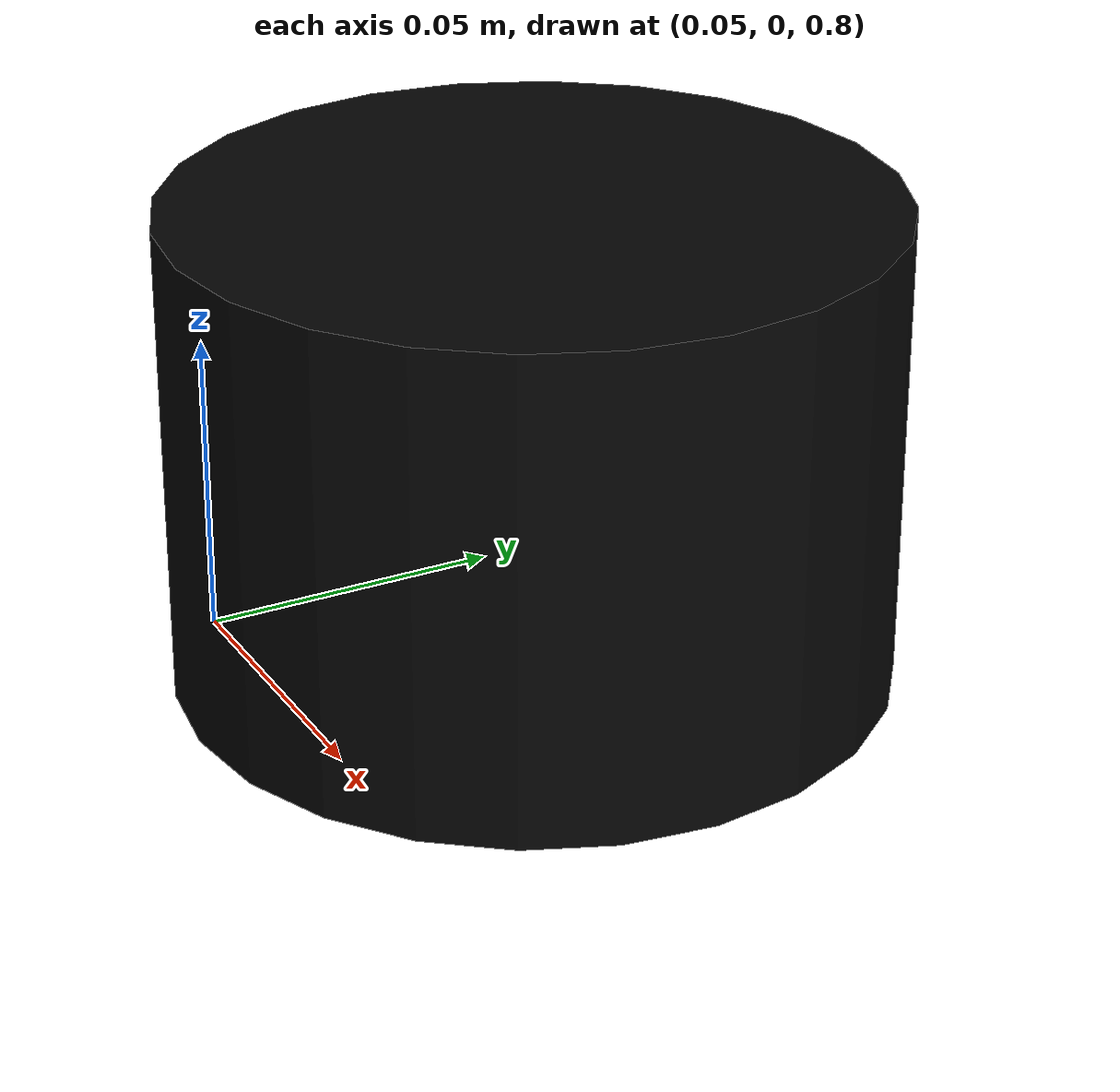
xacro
<?xml version="1.0"?>
<robot name="panther_sensors_only" xmlns:xacro="http://www.ros.org/wiki/xacro">

  <link name="panther/base_footprint"/>

  <!-- Velodyne VLP-16                                          -->
  <!-- Desired TF:                                               -->
  <!-- panther/base_footprint -> panther/velodyne_link            -->
  <!-- xyz = 0.125 0.02 0.825                                    -->

  <joint name="velodyne_joint" type="fixed">
    <parent link="panther/base_footprint"/>
    <child link="panther/velodyne_link"/>
    <origin xyz="0.125 0.02 0.825" rpy="0 0 0"/>
  </joint>

  <link name="panther/velodyne_link">
    <visual>
      <origin xyz="0 0 0.035" rpy="0 0 0"/>
      <geometry>
        <cylinder radius="0.052" length="0.07"/>
      </geometry>
      <material name="velodyne_black">
        <color rgba="0.02 0.02 0.02 1.0"/>
      </material>
    </visual>
  </link>

</robot>
